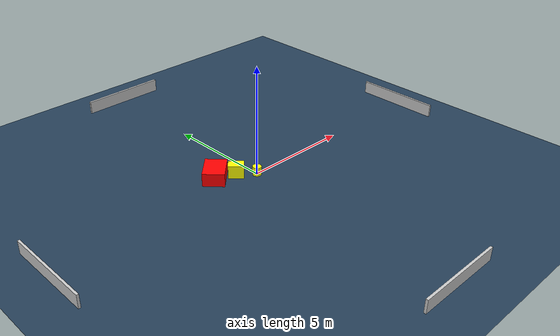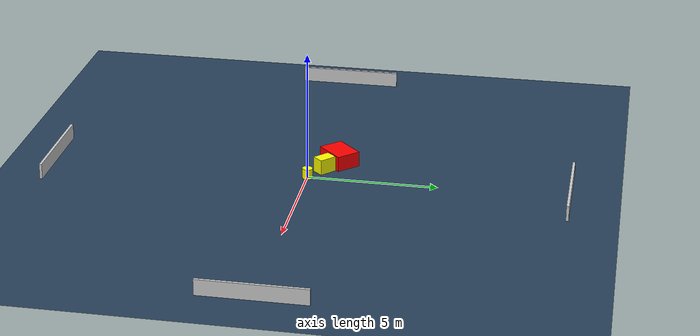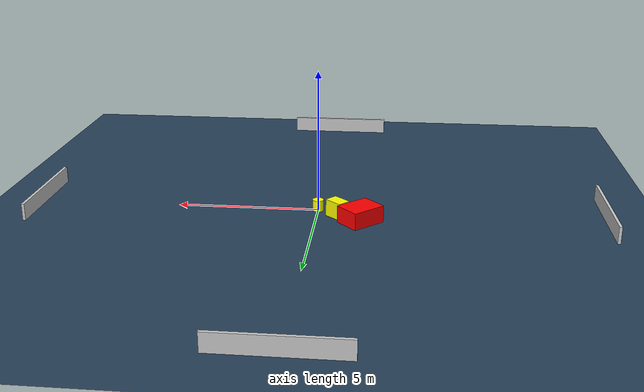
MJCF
<?xml version="1.0" ?>
<mujoco model="generated_environment">
  <option timestep="0.01" integrator="RK4" cone="elliptic"/>
  <default>
    <geom density="1"/>
  </default>
  <asset>
    <texture builtin="gradient" height="3072" name="skybox" rgb1="0.3 0.5 0.7" rgb2="0 0 0" type="skybox" width="512"/>
    <texture builtin="checker" height="300" name="groundplane" rgb1="0.2 0.3 0.4" rgb2="0.1 0.2 0.3" type="2d" width="300"/>
    <material name="groundplane" reflectance="0.2" texrepeat="5 5" texture="groundplane"/>
  </asset>
  <worldbody>
    <light dir="0 0 -1" directional="true" pos="0 0 1.5"/>
    <geom condim="3" friction="0.5 0.005 0.001" material="groundplane" name="floor" pos="0 0 0" size="0 0 0.05" type="plane"/>
    <body name="walls">
      <geom name="wall_1" condim="4" pos="-10.0 0.0 0.3" rgba="0.800000011920929 0.800000011920929 0.800000011920929 1.0" size="0.05 2.0 0.3" type="box"/>
      <geom name="wall_2" condim="4" pos="10.0 0.0 0.3" rgba="0.800000011920929 0.800000011920929 0.800000011920929 1.0" size="0.05 2.0 0.3" type="box"/>
      <geom name="wall_3" condim="4" pos="0.0 -10.0 0.3" rgba="0.800000011920929 0.800000011920929 0.800000011920929 1.0" size="2.0 0.05 0.3" type="box"/>
      <geom name="wall_4" condim="4" pos="0.0 10.0 0.3" rgba="0.800000011920929 0.800000011920929 0.800000011920929 1.0" size="2.0 0.05 0.3" type="box"/>
    </body>
    <body name="robot">
      <joint name="joint_x" type="slide" pos="0 0 0" axis="1 0 0"/>
      <joint name="joint_y" type="slide" pos="0 0 0" axis="0 1 0"/>
      <geom name="robot" type="cylinder" pos="0.0 0.0 0.2" size="0.2 0.2 0.0" mass="5.0" friction="1.0 0.005 0.0001" condim="4" rgba="1.0 1.0 0.0 1.0"/>
    </body>
    <body name="obstacle_1_movable">
      <geom name="obstacle_1_movable" condim="4" pos="-0.7339865594816364 0.5310013058931835 0.3" euler="0 0 137.52074389284036" friction="0.0 0.005 0.001" rgba="1.0 1.0 0.0 1.0" size="0.3469463568541812 0.23712496634939484 0.3" type="box" mass="0.1"/>
      <joint type="free"/>
    </body>
    <body name="obstacle_2_static">
      <geom name="obstacle_2_static" condim="4" pos="-1.5509998816550938 0.975758574409344 0.3" euler="0 0 133.5241417150858" friction="0.0 0.005 0.001" rgba="1.0 0.0 0.0 1.0" size="0.4843036384995912 0.6314872067797825 0.3" type="box"/>
    </body>
  </worldbody>
  <actuator>
    <motor name="actuator_x" joint="joint_x" gear="1" ctrlrange="-1 1"/>
    <motor name="actuator_y" joint="joint_y" gear="1" ctrlrange="-1 1"/>
  </actuator>
</mujoco>
